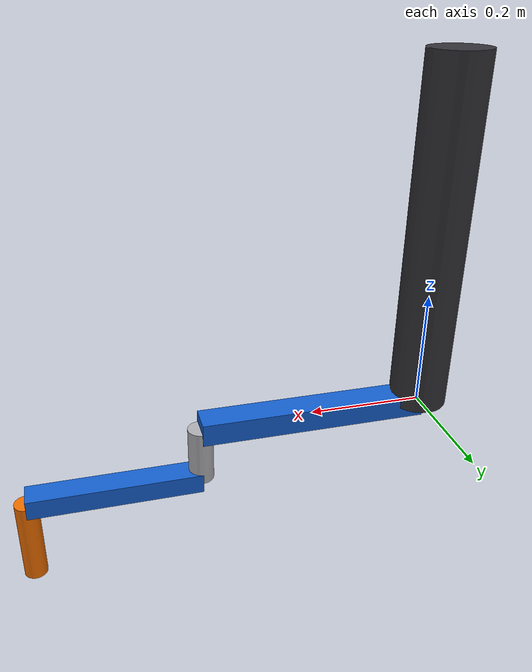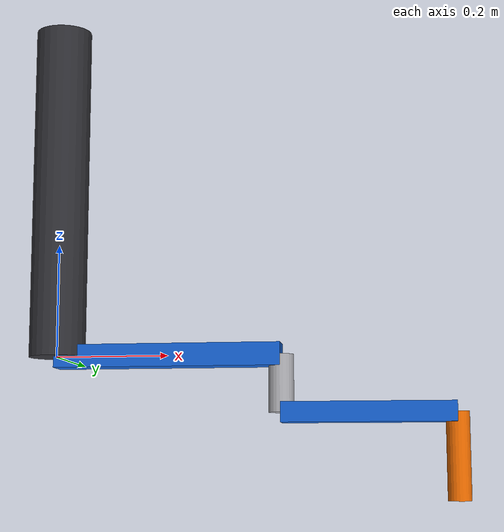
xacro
<?xml version="1.0" encoding="UTF-8"?>
<robot xmlns:xacro="http://www.ros.org/wiki/xacro" name="scara_robot">

  <xacro:property name="a2"    value="0.4"/>
  <xacro:property name="a3"    value="0.3"/>
  <xacro:property name="d3"    value="0.1"/>
  <xacro:property name="d4"    value="0.15"/>
  <xacro:property name="col_h" value="0.6"/>
  <xacro:property name="col_r" value="0.05"/>
  <xacro:property name="d2max" value="0.4"/>

  <material name="dark_grey"><color rgba="0.20 0.20 0.22 1.0"/></material>
  <material name="steel">    <color rgba="0.70 0.70 0.72 1.0"/></material>
  <material name="blue">     <color rgba="0.08 0.38 0.82 1.0"/></material>
  <material name="orange">   <color rgba="0.96 0.44 0.00 1.0"/></material>

  <xacro:arg name="controllers_yaml" default=""/>

  <ros2_control name="scara_control" type="system">
    <hardware>
      <plugin>gz_ros2_control/GazeboSimSystem</plugin>
    </hardware>
    <joint name="joint_1z">
      <command_interface name="position">
        <param name="min">0.0</param>
        <param name="max">${d2max}</param>
      </command_interface>
      <state_interface name="position">
        <param name="initial_value">0.40</param>
      </state_interface>
      <state_interface name="velocity"/>
    </joint>
    <joint name="joint_1theta">
      <command_interface name="position">
        <param name="min">-2.3562</param>
        <param name="max">2.3562</param>
      </command_interface>
      <state_interface name="position">
        <param name="initial_value">0.0</param>
      </state_interface>
      <state_interface name="velocity"/>
    </joint>
    <joint name="joint3">
      <command_interface name="position">
        <param name="min">-1.5708</param>
        <param name="max">1.5708</param>
      </command_interface>
      <state_interface name="position">
        <param name="initial_value">0.3</param>
      </state_interface>
      <state_interface name="velocity"/>
    </joint>
    <joint name="joint4">
      <command_interface name="position">
        <param name="min">-3.1416</param>
        <param name="max">3.1416</param>
      </command_interface>
      <state_interface name="position">
        <param name="initial_value">0.0</param>
      </state_interface>
      <state_interface name="velocity"/>
    </joint>
  </ros2_control>

  <link name="world"/>

  <joint name="world_joint" type="fixed">
    <parent link="world"/>
    <child  link="base_link"/>
    <origin xyz="0 0 0" rpy="0 0 0"/>
  </joint>

  <link name="base_link">
    <visual>
      <origin xyz="0 0 ${col_h/2}" rpy="0 0 0"/>
      <geometry><cylinder radius="${col_r}" length="${col_h}"/></geometry>
      <material name="dark_grey"/>
    </visual>
    <collision>
      <origin xyz="0 0 ${col_h/2}" rpy="0 0 0"/>
      <geometry><cylinder radius="${col_r}" length="${col_h}"/></geometry>
    </collision>
    <inertial>
      <mass value="5.0"/>
      <origin xyz="0 0 ${col_h/2}"/>
      <inertia ixx="0.15" ixy="0" ixz="0"
               iyy="0.15" iyz="0" izz="0.006"/>
    </inertial>
  </link>

  <link name="slide_link">
    <inertial>
      <mass value="0.1"/>
      <origin xyz="0 0 0"/>
      <inertia ixx="0.0001" ixy="0" ixz="0"
               iyy="0.0001" iyz="0" izz="0.0001"/>
    </inertial>
  </link>

  <link name="arm1_link">
    <visual>
      <origin xyz="${a2/2} 0 0" rpy="0 0 0"/>
      <geometry><box size="${a2} 0.050 0.040"/></geometry>
      <material name="blue"/>
    </visual>
    <collision>
      <origin xyz="${a2/2} 0 0" rpy="0 0 0"/>
      <geometry><box size="${a2} 0.050 0.040"/></geometry>
    </collision>
    <inertial>
      <mass value="1.0"/>
      <origin xyz="${a2/2} 0 0"/>
      <inertia ixx="0.00065" ixy="0" ixz="0"
               iyy="0.01338" iyz="0" izz="0.01338"/>
    </inertial>
  </link>

  <link name="arm2_link">
    <visual>
      <origin xyz="0 0 ${d3/2}" rpy="0 0 0"/>
      <geometry><cylinder radius="0.022" length="${d3}"/></geometry>
      <material name="steel"/>
    </visual>
    <visual>
      <origin xyz="${a3/2} 0 0" rpy="0 0 0"/>
      <geometry><box size="${a3} 0.045 0.035"/></geometry>
      <material name="blue"/>
    </visual>
    <collision>
      <origin xyz="${a3/2} 0 0" rpy="0 0 0"/>
      <geometry><box size="${a3} 0.045 0.035"/></geometry>
    </collision>
    <inertial>
      <mass value="0.7"/>
      <origin xyz="${a3/2} 0 0"/>
      <inertia ixx="0.00044" ixy="0" ixz="0"
               iyy="0.00536" iyz="0" izz="0.00536"/>
    </inertial>
  </link>

  <link name="tool_link">
    <visual>
      <origin xyz="0 0 ${-d4/2}" rpy="0 0 0"/>
      <geometry><cylinder radius="0.020" length="${d4}"/></geometry>
      <material name="orange"/>
    </visual>
    <collision>
      <origin xyz="0 0 ${-d4/2}" rpy="0 0 0"/>
      <geometry><cylinder radius="0.020" length="${d4}"/></geometry>
    </collision>
    <inertial>
      <mass value="0.10"/>
      <origin xyz="0 0 ${-d4/2}"/>
      <inertia ixx="0.00009" ixy="0" ixz="0"
               iyy="0.00009" iyz="0" izz="0.00002"/>
    </inertial>
  </link>

  <joint name="joint_1z" type="prismatic">
    <parent link="base_link"/>
    <child  link="slide_link"/>
    <origin xyz="0 0 0" rpy="0 0 0"/>
    <axis   xyz="0 0 1"/>
    <limit  lower="0.0" upper="${d2max}" effort="50.0" velocity="0.5"/>
    <dynamics damping="5.0" friction="2.0"/>
  </joint>

  <joint name="joint_1theta" type="revolute">
    <parent link="slide_link"/>
    <child  link="arm1_link"/>
    <origin xyz="0 0 0" rpy="0 0 0"/>
    <axis   xyz="0 0 1"/>
    <limit  lower="-2.3562" upper="2.3562" effort="20.0" velocity="3.14"/>
    <dynamics damping="0.10" friction="0.05"/>
  </joint>

  <joint name="joint3" type="revolute">
    <parent link="arm1_link"/>
    <child  link="arm2_link"/>
    <origin xyz="${a2} 0 ${-d3}" rpy="0 0 0"/>
    <axis   xyz="0 0 1"/>
    <limit  lower="-1.5708" upper="1.5708" effort="15.0" velocity="3.14"/>
    <dynamics damping="0.10" friction="0.05"/>
  </joint>

  <joint name="joint4" type="revolute">
    <parent link="arm2_link"/>
    <child  link="tool_link"/>
    <origin xyz="${a3} 0 0" rpy="0 0 0"/>
    <axis   xyz="0 0 1"/>
    <limit  lower="-3.1416" upper="3.1416" effort="5.0" velocity="6.28"/>
    <dynamics damping="0.05" friction="0.02"/>
  </joint>

  <gazebo>
    <plugin filename="gz_ros2_control-system" name="gz_ros2_control::GazeboSimROS2ControlPlugin">
      <parameters>$(arg controllers_yaml)</parameters>
    </plugin>
  </gazebo>

  <gazebo reference="base_link"><material>Gazebo/DarkGrey</material></gazebo>
  <gazebo reference="arm1_link"><material>Gazebo/Blue</material></gazebo>
  <gazebo reference="arm2_link"><material>Gazebo/Blue</material></gazebo>
  <gazebo reference="tool_link"><material>Gazebo/Orange</material></gazebo>

<link name="camera_link">
    <inertial>
      <mass value="0.01"/>
      <origin xyz="0 0 0" rpy="0 0 0"/>
      <inertia ixx="0.0001" ixy="0" ixz="0" iyy="0.0001" iyz="0" izz="0.0001"/>
    </inertial>
  </link>

  <joint name="camera_joint" type="fixed">
    <parent link="world"/>
    <child link="camera_link"/>
    <origin xyz="0.55 0.0 0.8" rpy="0 1.5708 0"/>
  </joint>

  <gazebo>
    <plugin filename="libignition-gazebo-sensors-system.so" name="ignition::gazebo::systems::Sensors">
      <render_engine>ogre2</render_engine>
    </plugin>
  </gazebo>

  <gazebo reference="camera_link">
    <sensor name="overhead_camera" type="camera">
      <camera>
        <horizontal_fov>1.047</horizontal_fov>
        <image>
          <width>640</width>
          <height>480</height>
          <format>RGB_INT8</format>
        </image>
        <clip>
          <near>0.01</near>
          <far>10.0</far>
        </clip>
      </camera>
      <always_on>1</always_on>
      <update_rate>30</update_rate>
      <visualize>true</visualize>
      <topic>/camera/image_raw</topic>
    </sensor>
  </gazebo>
</robot>
